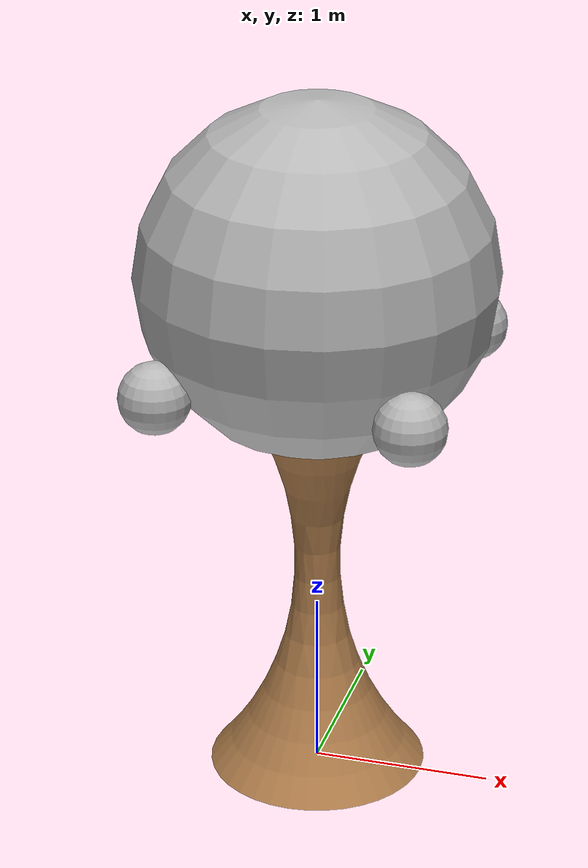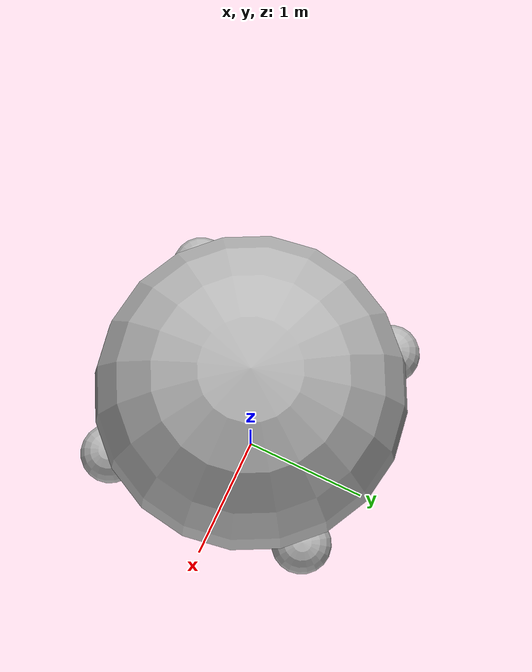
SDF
<?xml version="1.0" ?>
<sdf version="1.5">
  <model name="tree">
    <static>true</static>
    <link name="trunk">
      <collision name="collision">
        <geometry>
          <mesh>
            <uri>model://urdf/cad/tree.dae</uri>
            <scale>1 1 1</scale>
          </mesh>
        </geometry>
        <surface>
          <friction>
            <ode>
              <mu>100</mu>
              <mu2>50</mu2>
            </ode>
          </friction>
        </surface>
      </collision>
      <visual name="visual">
        <cast_shadows>false</cast_shadows>
        <geometry>
          <mesh>
            <uri>model://urdf/cad/tree.dae</uri>
            <scale>1 1 1</scale>
          </mesh>
        </geometry>
        <material>
          <script>
            <uri>file://media/materials/scripts/gazebo.material</uri>
            <name>Gazebo/WoodPallet</name>
          </script>
        </material>
      </visual>
    </link>
    <link name="center_ball">
      <pose frame=''>0 0 3 0 -0 0</pose>
      <collision name="collision">
        <geometry>
          <sphere>
            <radius>1.0</radius>
          </sphere>
        </geometry>
        <surface>
          <friction>
            <ode>
              <mu>100</mu>
              <mu2>50</mu2>
            </ode>
          </friction>
        </surface>
      </collision>
      <visual name="visual">
        <cast_shadows>false</cast_shadows>
        <geometry>
          <sphere>
            <radius>1.0</radius>
          </sphere>
        </geometry>
        <material>
          <script>
            <uri>model://urdf/gazebo.material</uri>
            <name>Gazebo/Leaf_image</name>
          </script>
        </material>
      </visual>
    </link>
    <link name="ball_1">
      <pose frame=''>0.7 0.7 2.5 0 -0 0</pose>
      <collision name="collision">
        <geometry>
          <sphere>
            <radius>0.2</radius>
          </sphere>
        </geometry>
        <surface>
          <friction>
            <ode>
              <mu>100</mu>
              <mu2>50</mu2>
            </ode>
          </friction>
        </surface>
      </collision>
      <visual name="visual">
        <cast_shadows>false</cast_shadows>
        <geometry>
          <sphere>
            <radius>0.2</radius>
          </sphere>
        </geometry>
        <material>
          <script>
            <uri>model://urdf/gazebo.material</uri>
            <name>Gazebo/Leaf_image</name>
          </script>
        </material>
      </visual>
    </link>
    <link name="ball_2">
      <pose frame=''>-0.7 -0.7 2.5 0 -0 0</pose>
      <collision name="collision">
        <geometry>
          <sphere>
            <radius>0.2</radius>
          </sphere>
        </geometry>
        <surface>
          <friction>
            <ode>
              <mu>100</mu>
              <mu2>50</mu2>
            </ode>
          </friction>
        </surface>
      </collision>
      <visual name="visual">
        <cast_shadows>false</cast_shadows>
        <geometry>
          <sphere>
            <radius>0.2</radius>
          </sphere>
        </geometry>
        <material>
          <script>
            <uri>model://urdf/gazebo.material</uri>
            <name>Gazebo/Leaf_image</name>
          </script>
        </material>
      </visual>
    </link>
    <link name="ball_3">
      <pose frame=''>-0.7 0.7 2.5 0 -0 0</pose>
      <collision name="collision">
        <geometry>
          <sphere>
            <radius>0.2</radius>
          </sphere>
        </geometry>
        <surface>
          <friction>
            <ode>
              <mu>100</mu>
              <mu2>50</mu2>
            </ode>
          </friction>
        </surface>
      </collision>
      <visual name="visual">
        <cast_shadows>false</cast_shadows>
        <geometry>
          <sphere>
            <radius>0.2</radius>
          </sphere>
        </geometry>
        <material>
          <script>
            <uri>model://urdf/gazebo.material</uri>
            <name>Gazebo/Leaf_image</name>
          </script>
        </material>
      </visual>
    </link>
    <link name="ball_4">
      <pose frame=''>0.7 -0.7 2.5 0 -0 0</pose>
      <collision name="collision">
        <geometry>
          <sphere>
            <radius>0.2</radius>
          </sphere>
        </geometry>
        <surface>
          <friction>
            <ode>
              <mu>100</mu>
              <mu2>50</mu2>
            </ode>
          </friction>
        </surface>
      </collision>
      <visual name="visual">
        <cast_shadows>false</cast_shadows>
        <geometry>
          <sphere>
            <radius>0.2</radius>
          </sphere>
        </geometry>
        <material>
          <script>
            <uri>model://urdf/gazebo.material</uri>
            <name>Gazebo/Leaf_image</name>
          </script>
        </material>
      </visual>
    </link>
  </model>
</sdf>
